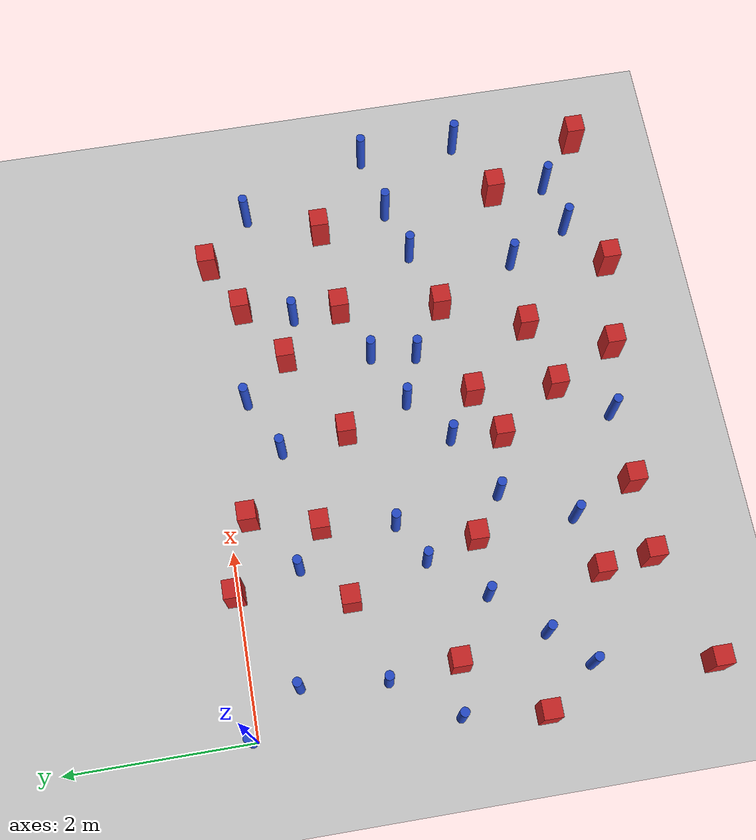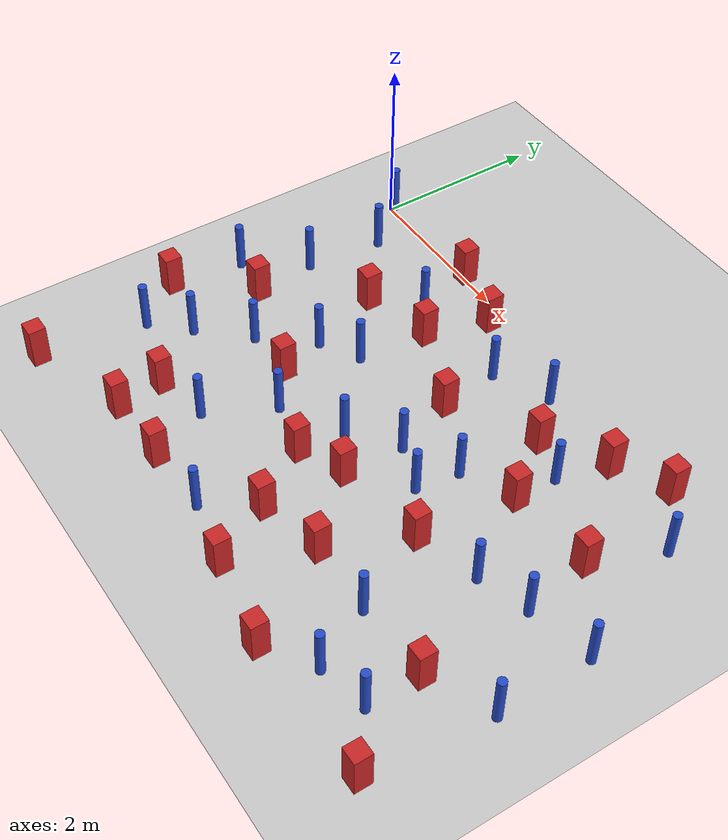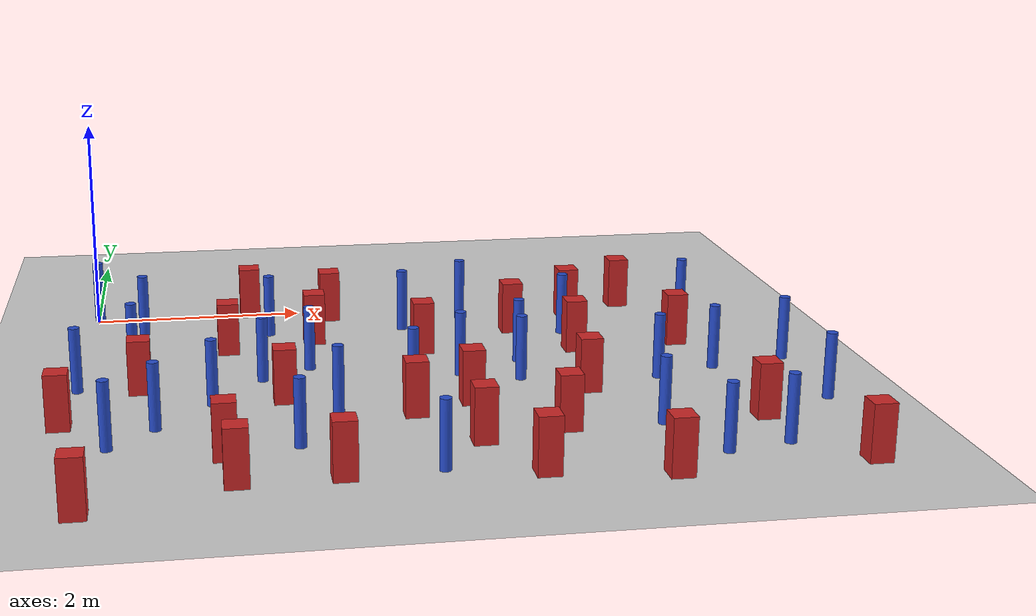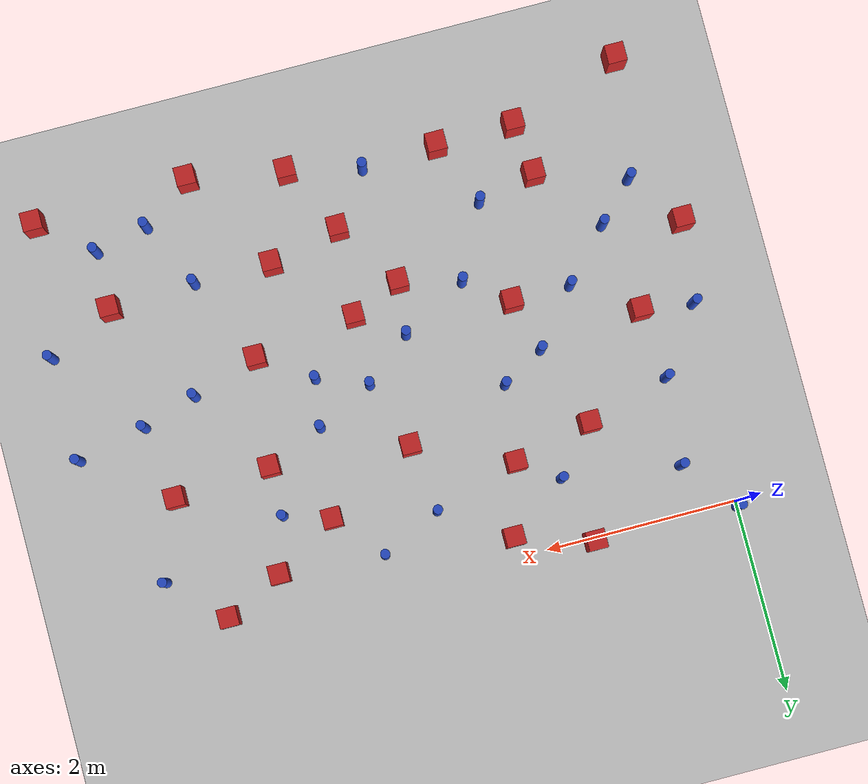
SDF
<sdf version="1.6">
 <world name="default">
  <model name="ground_plane">
   <static>1</static>
   <link name="link">
    <collision name="collision">
     <geometry><plane><normal>0 0 1</normal><size>100 100</size></plane></geometry>
     <surface><friction><ode><mu>100</mu><mu2>50</mu2></ode></friction></surface>
    </collision>
    <visual name="visual">
     <cast_shadows>0</cast_shadows>
     <geometry><plane><normal>0 0 1</normal><size>100 100</size></plane></geometry>
     <material>
      <ambient>1.0 1.0 1.0 1.0</ambient>
      <diffuse>0.8 0.8 0.8 1.0</diffuse>
      <specular>0.01 0.01 0.01 1.000000</specular>
     </material>
    </visual>
   </link>
  </model>
  <model name="NamedLocations">
   <static>true</static>
   <link name="DefaultStart"><pose>8.5 0 0 0 0 3.14</pose></link>
  </model>
  <model name="pole_obstacle7">
   <static>true</static>
   <pose>2.14908445065 -2.89493434447 7.38925637345e-09 -8.47170692798e-08 1.24976764939e-08 -1.74513093025e-07</pose>
   <link name="link">
    <pose>0 0 0.3 0 -0 0</pose>
    <inertial>
     <mass>1</mass>
     <inertia><ixx>0.145833</ixx><ixy>0</ixy><ixz>0</ixz><iyy>0.145833</iyy><iyz>0</iyz><izz>0.125</izz></inertia>
    </inertial>
    <collision name="collision">
     <geometry><cylinder><radius>0.05</radius><length>.6</length></cylinder></geometry>
    </collision>
    <visual name="visual">
     <geometry><cylinder><radius>0.05</radius><length>.6</length></cylinder></geometry>
     <material>
      <script><name>Gazebo/Blue</name><uri>file://media/materials/scripts/gazebo.material</uri></script>
     </material>
    </visual>
   </link>
  </model>
  <model name="pole_obstacle8">
   <static>true</static>
   <pose>1.99184411224 -1.75286387107 7.38925637345e-09 -8.47170692795e-08 1.24976764702e-08 -1.74513093038e-07</pose>
   <link name="link">
    <pose>0 0 0.3 0 -0 0</pose>
    <inertial>
     <mass>1</mass>
     <inertia><ixx>0.145833</ixx><ixy>0</ixy><ixz>0</ixz><iyy>0.145833</iyy><iyz>0</iyz><izz>0.125</izz></inertia>
    </inertial>
    <collision name="collision">
     <geometry><cylinder><radius>0.05</radius><length>.6</length></cylinder></geometry>
    </collision>
    <visual name="visual">
     <geometry><cylinder><radius>0.05</radius><length>.6</length></cylinder></geometry>
     <material>
      <script><name>Gazebo/Blue</name><uri>file://media/materials/scripts/gazebo.material</uri></script>
     </material>
    </visual>
   </link>
  </model>
  <model name="square_post_obstacle8">
   <static>true</static>
   <pose>1.7114251339 -2.5676912984 1.91545236811e-07 -7.35059704564e-06 1.12565212e-07 2.39332434364e-05</pose>
   <link name="link">
    <pose>0 0 0.25 0 -0 0</pose>
    <inertial>
     <mass>100</mass>
     <inertia>
      <ixx>0.166667</ixx>
      <ixy>0</ixy>
      <ixz>0</ixz>
      <iyy>0.166667</iyy>
      <iyz>0</iyz>
      <izz>0.166667</izz>
     </inertia>
    </inertial>
    <collision name="collision"><geometry><box><size>.2 .2 .5</size></box></geometry></collision>
    <visual name="visual">
     <geometry><box><size>.2 .2 .5</size></box></geometry>
     <material>
      <script><name>Gazebo/Red</name><uri>file://media/materials/scripts/gazebo.material</uri></script>
     </material>
    </visual>
   </link>
  </model>
  <model name="pole_obstacle15">
   <static>true</static>
   <pose>5.86521102826 -0.665007750339 7.38925637345e-09 -8.47170692799e-08 1.24976765038e-08 -1.74513093018e-07</pose>
   <link name="link">
    <pose>0 0 0.3 0 -0 0</pose>
    <inertial>
     <mass>1</mass>
     <inertia><ixx>0.145833</ixx><ixy>0</ixy><ixz>0</ixz><iyy>0.145833</iyy><iyz>0</iyz><izz>0.125</izz></inertia>
    </inertial>
    <collision name="collision">
     <geometry><cylinder><radius>0.05</radius><length>.6</length></cylinder></geometry>
    </collision>
    <visual name="visual">
     <geometry><cylinder><radius>0.05</radius><length>.6</length></cylinder></geometry>
     <material>
      <script><name>Gazebo/Blue</name><uri>file://media/materials/scripts/gazebo.material</uri></script>
     </material>
    </visual>
   </link>
  </model>
  <model name="square_post_obstacle12">
   <static>true</static>
   <pose>3.25410924652 -3.74712516584 1.91545236811e-07 -7.35059704564e-06 1.12565212e-07 2.39332434364e-05</pose>
   <link name="link">
    <pose>0 0 0.25 0 -0 0</pose>
    <inertial>
     <mass>100</mass>
     <inertia>
      <ixx>0.166667</ixx>
      <ixy>0</ixy>
      <ixz>0</ixz>
      <iyy>0.166667</iyy>
      <iyz>0</iyz>
      <izz>0.166667</izz>
     </inertia>
    </inertial>
    <collision name="collision"><geometry><box><size>.2 .2 .5</size></box></geometry></collision>
    <visual name="visual">
     <geometry><box><size>.2 .2 .5</size></box></geometry>
     <material>
      <script><name>Gazebo/Red</name><uri>file://media/materials/scripts/gazebo.material</uri></script>
     </material>
    </visual>
   </link>
  </model>
  <model name="square_post_obstacle17">
   <static>true</static>
   <pose>4.00412145843 -3.56660141337 1.91545236811e-07 -7.35059704564e-06 1.12565212e-07 2.39332434364e-05</pose>
   <link name="link">
    <pose>0 0 0.25 0 -0 0</pose>
    <inertial>
     <mass>100</mass>
     <inertia>
      <ixx>0.166667</ixx>
      <ixy>0</ixy>
      <ixz>0</ixz>
      <iyy>0.166667</iyy>
      <iyz>0</iyz>
      <izz>0.166667</izz>
     </inertia>
    </inertial>
    <collision name="collision"><geometry><box><size>.2 .2 .5</size></box></geometry></collision>
    <visual name="visual">
     <geometry><box><size>.2 .2 .5</size></box></geometry>
     <material>
      <script><name>Gazebo/Red</name><uri>file://media/materials/scripts/gazebo.material</uri></script>
     </material>
    </visual>
   </link>
  </model>
  <model name="pole_obstacle21">
   <static>true</static>
   <pose>4.53729864768 -1.02349969025 7.38925637345e-09 -8.471706928e-08 1.24976765101e-08 -1.74513093015e-07</pose>
   <link name="link">
    <pose>0 0 0.3 0 -0 0</pose>
    <inertial>
     <mass>1</mass>
     <inertia><ixx>0.145833</ixx><ixy>0</ixy><ixz>0</ixz><iyy>0.145833</iyy><iyz>0</iyz><izz>0.125</izz></inertia>
    </inertial>
    <collision name="collision">
     <geometry><cylinder><radius>0.05</radius><length>.6</length></cylinder></geometry>
    </collision>
    <visual name="visual">
     <geometry><cylinder><radius>0.05</radius><length>.6</length></cylinder></geometry>
     <material>
      <script><name>Gazebo/Blue</name><uri>file://media/materials/scripts/gazebo.material</uri></script>
     </material>
    </visual>
   </link>
  </model>
  <model name="square_post_obstacle23">
   <static>true</static>
   <pose>5.32038070776 -0.160613806621 1.91545236811e-07 -7.35059704564e-06 1.12565212e-07 2.39332434364e-05</pose>
   <link name="link">
    <pose>0 0 0.25 0 -0 0</pose>
    <inertial>
     <mass>100</mass>
     <inertia>
      <ixx>0.166667</ixx>
      <ixy>0</ixy>
      <ixz>0</ixz>
      <iyy>0.166667</iyy>
      <iyz>0</iyz>
      <izz>0.166667</izz>
     </inertia>
    </inertial>
    <collision name="collision"><geometry><box><size>.2 .2 .5</size></box></geometry></collision>
    <visual name="visual">
     <geometry><box><size>.2 .2 .5</size></box></geometry>
     <material>
      <script><name>Gazebo/Red</name><uri>file://media/materials/scripts/gazebo.material</uri></script>
     </material>
    </visual>
   </link>
  </model>
  <model name="pole_obstacle32">
   <static>true</static>
   <pose>6.42759517815 -3.18701903292 7.38925637345e-09 -8.47170692798e-08 1.24976764937e-08 -1.74513093023e-07</pose>
   <link name="link">
    <pose>0 0 0.3 0 -0 0</pose>
    <inertial>
     <mass>1</mass>
     <inertia><ixx>0.145833</ixx><ixy>0</ixy><ixz>0</ixz><iyy>0.145833</iyy><iyz>0</iyz><izz>0.125</izz></inertia>
    </inertial>
    <collision name="collision">
     <geometry><cylinder><radius>0.05</radius><length>.6</length></cylinder></geometry>
    </collision>
    <visual name="visual">
     <geometry><cylinder><radius>0.05</radius><length>.6</length></cylinder></geometry>
     <material>
      <script><name>Gazebo/Blue</name><uri>file://media/materials/scripts/gazebo.material</uri></script>
     </material>
    </visual>
   </link>
  </model>
  <model name="square_post_obstacle28">
   <static>true</static>
   <pose>4.40141531566 -2.66631912794 1.91545236811e-07 -7.35059704564e-06 1.12565212e-07 2.39332434364e-05</pose>
   <link name="link">
    <pose>0 0 0.25 0 -0 0</pose>
    <inertial>
     <mass>100</mass>
     <inertia>
      <ixx>0.166667</ixx>
      <ixy>0</ixy>
      <ixz>0</ixz>
      <iyy>0.166667</iyy>
      <iyz>0</iyz>
      <izz>0.166667</izz>
     </inertia>
    </inertial>
    <collision name="collision"><geometry><box><size>.2 .2 .5</size></box></geometry></collision>
    <visual name="visual">
     <geometry><box><size>.2 .2 .5</size></box></geometry>
     <material>
      <script><name>Gazebo/Red</name><uri>file://media/materials/scripts/gazebo.material</uri></script>
     </material>
    </visual>
   </link>
  </model>
  <model name="pole_obstacle34">
   <static>true</static>
   <pose>3.62281975082 -0.374276649301 7.38925637345e-09 -8.471706928e-08 1.24976765172e-08 -1.74513093013e-07</pose>
   <link name="link">
    <pose>0 0 0.3 0 -0 0</pose>
    <inertial>
     <mass>1</mass>
     <inertia><ixx>0.145833</ixx><ixy>0</ixy><ixz>0</ixz><iyy>0.145833</iyy><iyz>0</iyz><izz>0.125</izz></inertia>
    </inertial>
    <collision name="collision">
     <geometry><cylinder><radius>0.05</radius><length>.6</length></cylinder></geometry>
    </collision>
    <visual name="visual">
     <geometry><cylinder><radius>0.05</radius><length>.6</length></cylinder></geometry>
     <material>
      <script><name>Gazebo/Blue</name><uri>file://media/materials/scripts/gazebo.material</uri></script>
     </material>
    </visual>
   </link>
  </model>
  <model name="pole_obstacle54">
   <static>true</static>
   <pose>0.375780018371 -1.40705268482 7.38925637345e-09 -8.47170692798e-08 1.24976765025e-08 -1.74513093018e-07</pose>
   <link name="link">
    <pose>0 0 0.3 0 -0 0</pose>
    <inertial>
     <mass>1</mass>
     <inertia><ixx>0.145833</ixx><ixy>0</ixy><ixz>0</ixz><iyy>0.145833</iyy><iyz>0</iyz><izz>0.125</izz></inertia>
    </inertial>
    <collision name="collision">
     <geometry><cylinder><radius>0.05</radius><length>.6</length></cylinder></geometry>
    </collision>
    <visual name="visual">
     <geometry><cylinder><radius>0.05</radius><length>.6</length></cylinder></geometry>
     <material>
      <script><name>Gazebo/Blue</name><uri>file://media/materials/scripts/gazebo.material</uri></script>
     </material>
    </visual>
   </link>
  </model>
  <model name="square_post_obstacle41">
   <static>true</static>
   <pose>3.09473459793 -1.39364364701 1.91545236811e-07 -7.35059704564e-06 1.12565212e-07 2.39332434364e-05</pose>
   <link name="link">
    <pose>0 0 0.25 0 -0 0</pose>
    <inertial>
     <mass>100</mass>
     <inertia>
      <ixx>0.166667</ixx>
      <ixy>0</ixy>
      <ixz>0</ixz>
      <iyy>0.166667</iyy>
      <iyz>0</iyz>
      <izz>0.166667</izz>
     </inertia>
    </inertial>
    <collision name="collision"><geometry><box><size>.2 .2 .5</size></box></geometry></collision>
    <visual name="visual">
     <geometry><box><size>.2 .2 .5</size></box></geometry>
     <material>
      <script><name>Gazebo/Red</name><uri>file://media/materials/scripts/gazebo.material</uri></script>
     </material>
    </visual>
   </link>
  </model>
  <model name="square_post_obstacle46">
   <static>true</static>
   <pose>5.72413039317 -3.53020704582 1.91545236811e-07 -7.35059704564e-06 1.12565212e-07 2.39332434364e-05</pose>
   <link name="link">
    <pose>0 0 0.25 0 -0 0</pose>
    <inertial>
     <mass>100</mass>
     <inertia>
      <ixx>0.166667</ixx>
      <ixy>0</ixy>
      <ixz>0</ixz>
      <iyy>0.166667</iyy>
      <iyz>0</iyz>
      <izz>0.166667</izz>
     </inertia>
    </inertial>
    <collision name="collision"><geometry><box><size>.2 .2 .5</size></box></geometry></collision>
    <visual name="visual">
     <geometry><box><size>.2 .2 .5</size></box></geometry>
     <material>
      <script><name>Gazebo/Red</name><uri>file://media/materials/scripts/gazebo.material</uri></script>
     </material>
    </visual>
   </link>
  </model>
  <model name="square_post_obstacle50">
   <static>true</static>
   <pose>1.23055104204 -4.34479336745 1.91545236811e-07 -7.35059704564e-06 1.12565212e-07 2.39332434364e-05</pose>
   <link name="link">
    <pose>0 0 0.25 0 -0 0</pose>
    <inertial>
     <mass>100</mass>
     <inertia>
      <ixx>0.166667</ixx>
      <ixy>0</ixy>
      <ixz>0</ixz>
      <iyy>0.166667</iyy>
      <iyz>0</iyz>
      <izz>0.166667</izz>
     </inertia>
    </inertial>
    <collision name="collision"><geometry><box><size>.2 .2 .5</size></box></geometry></collision>
    <visual name="visual">
     <geometry><box><size>.2 .2 .5</size></box></geometry>
     <material>
      <script><name>Gazebo/Red</name><uri>file://media/materials/scripts/gazebo.material</uri></script>
     </material>
    </visual>
   </link>
  </model>
  <model name="pole_obstacle67">
   <static>true</static>
   <pose>2.84828356699 -4.29018562051 7.38925637345e-09 -8.47170692798e-08 1.24976765033e-08 -1.74513093019e-07</pose>
   <link name="link">
    <pose>0 0 0.3 0 -0 0</pose>
    <inertial>
     <mass>1</mass>
     <inertia><ixx>0.145833</ixx><ixy>0</ixy><ixz>0</ixz><iyy>0.145833</iyy><iyz>0</iyz><izz>0.125</izz></inertia>
    </inertial>
    <collision name="collision">
     <geometry><cylinder><radius>0.05</radius><length>.6</length></cylinder></geometry>
    </collision>
    <visual name="visual">
     <geometry><cylinder><radius>0.05</radius><length>.6</length></cylinder></geometry>
     <material>
      <script><name>Gazebo/Blue</name><uri>file://media/materials/scripts/gazebo.material</uri></script>
     </material>
    </visual>
   </link>
  </model>
  <model name="square_post_obstacle52">
   <static>true</static>
   <pose>1.26507650885 -1.15579981526 1.91545236811e-07 -7.35059704564e-06 1.12565212e-07 2.39332434364e-05</pose>
   <link name="link">
    <pose>0 0 0.25 0 -0 0</pose>
    <inertial>
     <mass>100</mass>
     <inertia>
      <ixx>0.166667</ixx>
      <ixy>0</ixy>
      <ixz>0</ixz>
      <iyy>0.166667</iyy>
      <iyz>0</iyz>
      <izz>0.166667</izz>
     </inertia>
    </inertial>
    <collision name="collision"><geometry><box><size>.2 .2 .5</size></box></geometry></collision>
    <visual name="visual">
     <geometry><box><size>.2 .2 .5</size></box></geometry>
     <material>
      <script><name>Gazebo/Red</name><uri>file://media/materials/scripts/gazebo.material</uri></script>
     </material>
    </visual>
   </link>
  </model>
  <model name="square_post_obstacle53">
   <static>true</static>
   <pose>4.05412183959 -0.870190019096 1.91545236811e-07 -7.35059704564e-06 1.12565212e-07 2.39332434364e-05</pose>
   <link name="link">
    <pose>0 0 0.25 0 -0 0</pose>
    <inertial>
     <mass>100</mass>
     <inertia>
      <ixx>0.166667</ixx>
      <ixy>0</ixy>
      <ixz>0</ixz>
      <iyy>0.166667</iyy>
      <iyz>0</iyz>
      <izz>0.166667</izz>
     </inertia>
    </inertial>
    <collision name="collision"><geometry><box><size>.2 .2 .5</size></box></geometry></collision>
    <visual name="visual">
     <geometry><box><size>.2 .2 .5</size></box></geometry>
     <material>
      <script><name>Gazebo/Red</name><uri>file://media/materials/scripts/gazebo.material</uri></script>
     </material>
    </visual>
   </link>
  </model>
  <model name="square_post_obstacle57">
   <static>true</static>
   <pose>4.71587396722 -0.457304389804 1.91545236811e-07 -7.35059704564e-06 1.12565212e-07 2.39332434364e-05</pose>
   <link name="link">
    <pose>0 0 0.25 0 -0 0</pose>
    <inertial>
     <mass>100</mass>
     <inertia>
      <ixx>0.166667</ixx>
      <ixy>0</ixy>
      <ixz>0</ixz>
      <iyy>0.166667</iyy>
      <iyz>0</iyz>
      <izz>0.166667</izz>
     </inertia>
    </inertial>
    <collision name="collision"><geometry><box><size>.2 .2 .5</size></box></geometry></collision>
    <visual name="visual">
     <geometry><box><size>.2 .2 .5</size></box></geometry>
     <material>
      <script><name>Gazebo/Red</name><uri>file://media/materials/scripts/gazebo.material</uri></script>
     </material>
    </visual>
   </link>
  </model>
  <model name="square_post_obstacle59">
   <static>true</static>
   <pose>-0.194329762982 -2.93886804131 1.91545236811e-07 -7.35059704564e-06 1.12565212e-07 2.39332434364e-05</pose>
   <link name="link">
    <pose>0 0 0.25 0 -0 0</pose>
    <inertial>
     <mass>100</mass>
     <inertia>
      <ixx>0.166667</ixx>
      <ixy>0</ixy>
      <ixz>0</ixz>
      <iyy>0.166667</iyy>
      <iyz>0</iyz>
      <izz>0.166667</izz>
     </inertia>
    </inertial>
    <collision name="collision"><geometry><box><size>.2 .2 .5</size></box></geometry></collision>
    <visual name="visual">
     <geometry><box><size>.2 .2 .5</size></box></geometry>
     <material>
      <script><name>Gazebo/Red</name><uri>file://media/materials/scripts/gazebo.material</uri></script>
     </material>
    </visual>
   </link>
  </model>
  <model name="pole_obstacle71">
   <static>true</static>
   <pose>0.00816820797269 0.0530729815732 7.38925637345e-09 -8.471706928e-08 1.24976765096e-08 -1.74513093014e-07</pose>
   <link name="link">
    <pose>0 0 0.3 0 -0 0</pose>
    <inertial>
     <mass>1</mass>
     <inertia><ixx>0.145833</ixx><ixy>0</ixy><ixz>0</ixz><iyy>0.145833</iyy><iyz>0</iyz><izz>0.125</izz></inertia>
    </inertial>
    <collision name="collision">
     <geometry><cylinder><radius>0.05</radius><length>.6</length></cylinder></geometry>
    </collision>
    <visual name="visual">
     <geometry><cylinder><radius>0.05</radius><length>.6</length></cylinder></geometry>
     <material>
      <script><name>Gazebo/Blue</name><uri>file://media/materials/scripts/gazebo.material</uri></script>
     </material>
    </visual>
   </link>
  </model>
  <model name="pole_obstacle78">
   <static>true</static>
   <pose>1.76806035619 -3.64795132494 7.38925637345e-09 -8.47170692799e-08 1.24976765053e-08 -1.74513093017e-07</pose>
   <link name="link">
    <pose>0 0 0.3 0 -0 0</pose>
    <inertial>
     <mass>1</mass>
     <inertia><ixx>0.145833</ixx><ixy>0</ixy><ixz>0</ixz><iyy>0.145833</iyy><iyz>0</iyz><izz>0.125</izz></inertia>
    </inertial>
    <collision name="collision">
     <geometry><cylinder><radius>0.05</radius><length>.6</length></cylinder></geometry>
    </collision>
    <visual name="visual">
     <geometry><cylinder><radius>0.05</radius><length>.6</length></cylinder></geometry>
     <material>
      <script><name>Gazebo/Blue</name><uri>file://media/materials/scripts/gazebo.material</uri></script>
     </material>
    </visual>
   </link>
  </model>
  <model name="pole_obstacle87">
   <static>true</static>
   <pose>5.68408358011 -2.25685791552 7.38925637345e-09 -8.47170692798e-08 1.24976764937e-08 -1.74513093023e-07</pose>
   <link name="link">
    <pose>0 0 0.3 0 -0 0</pose>
    <inertial>
     <mass>1</mass>
     <inertia><ixx>0.145833</ixx><ixy>0</ixy><ixz>0</ixz><iyy>0.145833</iyy><iyz>0</iyz><izz>0.125</izz></inertia>
    </inertial>
    <collision name="collision">
     <geometry><cylinder><radius>0.05</radius><length>.6</length></cylinder></geometry>
    </collision>
    <visual name="visual">
     <geometry><cylinder><radius>0.05</radius><length>.6</length></cylinder></geometry>
     <material>
      <script><name>Gazebo/Blue</name><uri>file://media/materials/scripts/gazebo.material</uri></script>
     </material>
    </visual>
   </link>
  </model>
  <model name="square_post_obstacle82">
   <static>true</static>
   <pose>0.03997479998 -4.74278870853 1.91545236811e-07 -7.35059704564e-06 1.12565212e-07 2.39332434364e-05</pose>
   <link name="link">
    <pose>0 0 0.25 0 -0 0</pose>
    <inertial>
     <mass>100</mass>
     <inertia>
      <ixx>0.166667</ixx>
      <ixy>0</ixy>
      <ixz>0</ixz>
      <iyy>0.166667</iyy>
      <iyz>0</iyz>
      <izz>0.166667</izz>
     </inertia>
    </inertial>
    <collision name="collision"><geometry><box><size>.2 .2 .5</size></box></geometry></collision>
    <visual name="visual">
     <geometry><box><size>.2 .2 .5</size></box></geometry>
     <material>
      <script><name>Gazebo/Red</name><uri>file://media/materials/scripts/gazebo.material</uri></script>
     </material>
    </visual>
   </link>
  </model>
  <model name="pole_obstacle96">
   <static>true</static>
   <pose>0.462825550435 -0.498114350224 7.38925637345e-09 -8.47170692798e-08 1.24976764931e-08 -1.74513093024e-07</pose>
   <link name="link">
    <pose>0 0 0.3 0 -0 0</pose>
    <inertial>
     <mass>1</mass>
     <inertia><ixx>0.145833</ixx><ixy>0</ixy><ixz>0</ixz><iyy>0.145833</iyy><iyz>0</iyz><izz>0.125</izz></inertia>
    </inertial>
    <collision name="collision">
     <geometry><cylinder><radius>0.05</radius><length>.6</length></cylinder></geometry>
    </collision>
    <visual name="visual">
     <geometry><cylinder><radius>0.05</radius><length>.6</length></cylinder></geometry>
     <material>
      <script><name>Gazebo/Blue</name><uri>file://media/materials/scripts/gazebo.material</uri></script>
     </material>
    </visual>
   </link>
  </model>
  <model name="pole_obstacle98">
   <static>true</static>
   <pose>3.93919136603 -1.80496720836 7.38925637345e-09 -8.471706928e-08 1.24976765152e-08 -1.74513093012e-07</pose>
   <link name="link">
    <pose>0 0 0.3 0 -0 0</pose>
    <inertial>
     <mass>1</mass>
     <inertia><ixx>0.145833</ixx><ixy>0</ixy><ixz>0</ixz><iyy>0.145833</iyy><iyz>0</iyz><izz>0.125</izz></inertia>
    </inertial>
    <collision name="collision">
     <geometry><cylinder><radius>0.05</radius><length>.6</length></cylinder></geometry>
    </collision>
    <visual name="visual">
     <geometry><cylinder><radius>0.05</radius><length>.6</length></cylinder></geometry>
     <material>
      <script><name>Gazebo/Blue</name><uri>file://media/materials/scripts/gazebo.material</uri></script>
     </material>
    </visual>
   </link>
  </model>
  <model name="square_post_obstacle94">
   <static>true</static>
   <pose>3.62264984816 -4.45689397948 1.91545236811e-07 -7.35059704564e-06 1.12565212e-07 2.39332434364e-05</pose>
   <link name="link">
    <pose>0 0 0.25 0 -0 0</pose>
    <inertial>
     <mass>100</mass>
     <inertia>
      <ixx>0.166667</ixx>
      <ixy>0</ixy>
      <ixz>0</ixz>
      <iyy>0.166667</iyy>
      <iyz>0</iyz>
      <izz>0.166667</izz>
     </inertia>
    </inertial>
    <collision name="collision"><geometry><box><size>.2 .2 .5</size></box></geometry></collision>
    <visual name="visual">
     <geometry><box><size>.2 .2 .5</size></box></geometry>
     <material>
      <script><name>Gazebo/Red</name><uri>file://media/materials/scripts/gazebo.material</uri></script>
     </material>
    </visual>
   </link>
  </model>
  <model name="pole_obstacle102">
   <static>true</static>
   <pose>0.602475025792 -3.09957327462 7.38925637345e-09 -8.47170692799e-08 1.2497676509e-08 -1.74513093016e-07</pose>
   <link name="link">
    <pose>0 0 0.3 0 -0 0</pose>
    <inertial>
     <mass>1</mass>
     <inertia><ixx>0.145833</ixx><ixy>0</ixy><ixz>0</ixz><iyy>0.145833</iyy><iyz>0</iyz><izz>0.125</izz></inertia>
    </inertial>
    <collision name="collision">
     <geometry><cylinder><radius>0.05</radius><length>.6</length></cylinder></geometry>
    </collision>
    <visual name="visual">
     <geometry><cylinder><radius>0.05</radius><length>.6</length></cylinder></geometry>
     <material>
      <script><name>Gazebo/Blue</name><uri>file://media/materials/scripts/gazebo.material</uri></script>
     </material>
    </visual>
   </link>
  </model>
  <model name="pole_obstacle104">
   <static>true</static>
   <pose>-0.094653417852 -2.07535716583 7.38925637345e-09 -8.471706928e-08 1.24976765098e-08 -1.74513093016e-07</pose>
   <link name="link">
    <pose>0 0 0.3 0 -0 0</pose>
    <inertial>
     <mass>1</mass>
     <inertia><ixx>0.145833</ixx><ixy>0</ixy><ixz>0</ixz><iyy>0.145833</iyy><iyz>0</iyz><izz>0.125</izz></inertia>
    </inertial>
    <collision name="collision">
     <geometry><cylinder><radius>0.05</radius><length>.6</length></cylinder></geometry>
    </collision>
    <visual name="visual">
     <geometry><cylinder><radius>0.05</radius><length>.6</length></cylinder></geometry>
     <material>
      <script><name>Gazebo/Blue</name><uri>file://media/materials/scripts/gazebo.material</uri></script>
     </material>
    </visual>
   </link>
  </model>
  <model name="square_post_obstacle101">
   <static>true</static>
   <pose>2.79262401747 -3.05596250727 1.91545236811e-07 -7.35059704564e-06 1.12565212e-07 2.39332434364e-05</pose>
   <link name="link">
    <pose>0 0 0.25 0 -0 0</pose>
    <inertial>
     <mass>100</mass>
     <inertia>
      <ixx>0.166667</ixx>
      <ixy>0</ixy>
      <ixz>0</ixz>
      <iyy>0.166667</iyy>
      <iyz>0</iyz>
      <izz>0.166667</izz>
     </inertia>
    </inertial>
    <collision name="collision"><geometry><box><size>.2 .2 .5</size></box></geometry></collision>
    <visual name="visual">
     <geometry><box><size>.2 .2 .5</size></box></geometry>
     <material>
      <script><name>Gazebo/Red</name><uri>file://media/materials/scripts/gazebo.material</uri></script>
     </material>
    </visual>
   </link>
  </model>
  <model name="pole_obstacle107">
   <static>true</static>
   <pose>5.10753631234 -2.44102783662 7.38925637345e-09 -8.47170692798e-08 1.24976764937e-08 -1.74513093023e-07</pose>
   <link name="link">
    <pose>0 0 0.3 0 -0 0</pose>
    <inertial>
     <mass>1</mass>
     <inertia><ixx>0.145833</ixx><ixy>0</ixy><ixz>0</ixz><iyy>0.145833</iyy><iyz>0</iyz><izz>0.125</izz></inertia>
    </inertial>
    <collision name="collision">
     <geometry><cylinder><radius>0.05</radius><length>.6</length></cylinder></geometry>
    </collision>
    <visual name="visual">
     <geometry><cylinder><radius>0.05</radius><length>.6</length></cylinder></geometry>
     <material>
      <script><name>Gazebo/Blue</name><uri>file://media/materials/scripts/gazebo.material</uri></script>
     </material>
    </visual>
   </link>
  </model>
  <model name="square_post_obstacle111">
   <static>true</static>
   <pose>2.09575663258 -0.958167521459 1.91545236811e-07 -7.35059704564e-06 1.12565212e-07 2.39332434364e-05</pose>
   <link name="link">
    <pose>0 0 0.25 0 -0 0</pose>
    <inertial>
     <mass>100</mass>
     <inertia>
      <ixx>0.166667</ixx>
      <ixy>0</ixy>
      <ixz>0</ixz>
      <iyy>0.166667</iyy>
      <iyz>0</iyz>
      <izz>0.166667</izz>
     </inertia>
    </inertial>
    <collision name="collision"><geometry><box><size>.2 .2 .5</size></box></geometry></collision>
    <visual name="visual">
     <geometry><box><size>.2 .2 .5</size></box></geometry>
     <material>
      <script><name>Gazebo/Red</name><uri>file://media/materials/scripts/gazebo.material</uri></script>
     </material>
    </visual>
   </link>
  </model>
  <model name="square_post_obstacle116">
   <static>true</static>
   <pose>3.31860955937 -2.83030020593 1.91545236811e-07 -7.35059704564e-06 1.12565212e-07 2.39332434364e-05</pose>
   <link name="link">
    <pose>0 0 0.25 0 -0 0</pose>
    <inertial>
     <mass>100</mass>
     <inertia>
      <ixx>0.166667</ixx>
      <ixy>0</ixy>
      <ixz>0</ixz>
      <iyy>0.166667</iyy>
      <iyz>0</iyz>
      <izz>0.166667</izz>
     </inertia>
    </inertial>
    <collision name="collision"><geometry><box><size>.2 .2 .5</size></box></geometry></collision>
    <visual name="visual">
     <geometry><box><size>.2 .2 .5</size></box></geometry>
     <material>
      <script><name>Gazebo/Red</name><uri>file://media/materials/scripts/gazebo.material</uri></script>
     </material>
    </visual>
   </link>
  </model>
  <model name="pole_obstacle118">
   <static>true</static>
   <pose>5.1575581669 -4.26261845319 7.38925637345e-09 -8.47170692796e-08 1.24976764786e-08 -1.74513093032e-07</pose>
   <link name="link">
    <pose>0 0 0.3 0 -0 0</pose>
    <inertial>
     <mass>1</mass>
     <inertia><ixx>0.145833</ixx><ixy>0</ixy><ixz>0</ixz><iyy>0.145833</iyy><iyz>0</iyz><izz>0.125</izz></inertia>
    </inertial>
    <collision name="collision">
     <geometry><cylinder><radius>0.05</radius><length>.6</length></cylinder></geometry>
    </collision>
    <visual name="visual">
     <geometry><cylinder><radius>0.05</radius><length>.6</length></cylinder></geometry>
     <material>
      <script><name>Gazebo/Blue</name><uri>file://media/materials/scripts/gazebo.material</uri></script>
     </material>
    </visual>
   </link>
  </model>
  <model name="square_post_obstacle128">
   <static>true</static>
   <pose>2.30873939639 -0.218754665676 1.91545236811e-07 -7.35059704564e-06 1.12565212e-07 2.39332434364e-05</pose>
   <link name="link">
    <pose>0 0 0.25 0 -0 0</pose>
    <inertial>
     <mass>100</mass>
     <inertia>
      <ixx>0.166667</ixx>
      <ixy>0</ixy>
      <ixz>0</ixz>
      <iyy>0.166667</iyy>
      <iyz>0</iyz>
      <izz>0.166667</izz>
     </inertia>
    </inertial>
    <collision name="collision"><geometry><box><size>.2 .2 .5</size></box></geometry></collision>
    <visual name="visual">
     <geometry><box><size>.2 .2 .5</size></box></geometry>
     <material>
      <script><name>Gazebo/Red</name><uri>file://media/materials/scripts/gazebo.material</uri></script>
     </material>
    </visual>
   </link>
  </model>
  <model name="pole_obstacle137">
   <static>true</static>
   <pose>2.99466890857 -0.672952451165 7.38925637345e-09 -8.471706928e-08 1.24976765177e-08 -1.74513093012e-07</pose>
   <link name="link">
    <pose>0 0 0.3 0 -0 0</pose>
    <inertial>
     <mass>1</mass>
     <inertia><ixx>0.145833</ixx><ixy>0</ixy><ixz>0</ixz><iyy>0.145833</iyy><iyz>0</iyz><izz>0.125</izz></inertia>
    </inertial>
    <collision name="collision">
     <geometry><cylinder><radius>0.05</radius><length>.6</length></cylinder></geometry>
    </collision>
    <visual name="visual">
     <geometry><cylinder><radius>0.05</radius><length>.6</length></cylinder></geometry>
     <material>
      <script><name>Gazebo/Blue</name><uri>file://media/materials/scripts/gazebo.material</uri></script>
     </material>
    </visual>
   </link>
  </model>
  <model name="square_post_obstacle143">
   <static>true</static>
   <pose>4.63150887449 -4.63405840979 1.91545236811e-07 -7.35059704564e-06 1.12565212e-07 2.39332434364e-05</pose>
   <link name="link">
    <pose>0 0 0.25 0 -0 0</pose>
    <inertial>
     <mass>100</mass>
     <inertia>
      <ixx>0.166667</ixx>
      <ixy>0</ixy>
      <ixz>0</ixz>
      <iyy>0.166667</iyy>
      <iyz>0</iyz>
      <izz>0.166667</izz>
     </inertia>
    </inertial>
    <collision name="collision"><geometry><box><size>.2 .2 .5</size></box></geometry></collision>
    <visual name="visual">
     <geometry><box><size>.2 .2 .5</size></box></geometry>
     <material>
      <script><name>Gazebo/Red</name><uri>file://media/materials/scripts/gazebo.material</uri></script>
     </material>
    </visual>
   </link>
  </model>
  <model name="pole_obstacle150">
   <static>true</static>
   <pose>3.33793871676 -2.10409888972 7.38925637345e-09 -8.47170692798e-08 1.24976764939e-08 -1.74513093025e-07</pose>
   <link name="link">
    <pose>0 0 0.3 0 -0 0</pose>
    <inertial>
     <mass>1</mass>
     <inertia><ixx>0.145833</ixx><ixy>0</ixy><ixz>0</ixz><iyy>0.145833</iyy><iyz>0</iyz><izz>0.125</izz></inertia>
    </inertial>
    <collision name="collision">
     <geometry><cylinder><radius>0.05</radius><length>.6</length></cylinder></geometry>
    </collision>
    <visual name="visual">
     <geometry><cylinder><radius>0.05</radius><length>.6</length></cylinder></geometry>
     <material>
      <script><name>Gazebo/Blue</name><uri>file://media/materials/scripts/gazebo.material</uri></script>
     </material>
    </visual>
   </link>
  </model>
  <model name="square_post_obstacle147">
   <static>true</static>
   <pose>5.54971390065 -1.47488597941 1.91545236811e-07 -7.35059704564e-06 1.12565212e-07 2.39332434364e-05</pose>
   <link name="link">
    <pose>0 0 0.25 0 -0 0</pose>
    <inertial>
     <mass>100</mass>
     <inertia>
      <ixx>0.166667</ixx>
      <ixy>0</ixy>
      <ixz>0</ixz>
      <iyy>0.166667</iyy>
      <iyz>0</iyz>
      <izz>0.166667</izz>
     </inertia>
    </inertial>
    <collision name="collision"><geometry><box><size>.2 .2 .5</size></box></geometry></collision>
    <visual name="visual">
     <geometry><box><size>.2 .2 .5</size></box></geometry>
     <material>
      <script><name>Gazebo/Red</name><uri>file://media/materials/scripts/gazebo.material</uri></script>
     </material>
    </visual>
   </link>
  </model>
  <model name="pole_obstacle163">
   <static>true</static>
   <pose>4.82286591949 -3.57152423347 7.38925637345e-09 -8.47170692798e-08 1.24976764937e-08 -1.74513093023e-07</pose>
   <link name="link">
    <pose>0 0 0.3 0 -0 0</pose>
    <inertial>
     <mass>1</mass>
     <inertia><ixx>0.145833</ixx><ixy>0</ixy><ixz>0</ixz><iyy>0.145833</iyy><iyz>0</iyz><izz>0.125</izz></inertia>
    </inertial>
    <collision name="collision">
     <geometry><cylinder><radius>0.05</radius><length>.6</length></cylinder></geometry>
    </collision>
    <visual name="visual">
     <geometry><cylinder><radius>0.05</radius><length>.6</length></cylinder></geometry>
     <material>
      <script><name>Gazebo/Blue</name><uri>file://media/materials/scripts/gazebo.material</uri></script>
     </material>
    </visual>
   </link>
  </model>
  <model name="square_post_obstacle160">
   <static>true</static>
   <pose>1.51678520291 0.0273451327699 1.91545236811e-07 -7.35059704564e-06 1.12565212e-07 2.39332434364e-05</pose>
   <link name="link">
    <pose>0 0 0.25 0 -0 0</pose>
    <inertial>
     <mass>100</mass>
     <inertia>
      <ixx>0.166667</ixx>
      <ixy>0</ixy>
      <ixz>0</ixz>
      <iyy>0.166667</iyy>
      <iyz>0</iyz>
      <izz>0.166667</izz>
     </inertia>
    </inertial>
    <collision name="collision"><geometry><box><size>.2 .2 .5</size></box></geometry></collision>
    <visual name="visual">
     <geometry><box><size>.2 .2 .5</size></box></geometry>
     <material>
      <script><name>Gazebo/Red</name><uri>file://media/materials/scripts/gazebo.material</uri></script>
     </material>
    </visual>
   </link>
  </model>
  <model name="square_post_obstacle171">
   <static>true</static>
   <pose>2.05636668366 -4.32659020348 1.91545236811e-07 -7.35059704564e-06 1.12565212e-07 2.39332434364e-05</pose>
   <link name="link">
    <pose>0 0 0.25 0 -0 0</pose>
    <inertial>
     <mass>100</mass>
     <inertia>
      <ixx>0.166667</ixx>
      <ixy>0</ixy>
      <ixz>0</ixz>
      <iyy>0.166667</iyy>
      <iyz>0</iyz>
      <izz>0.166667</izz>
     </inertia>
    </inertial>
    <collision name="collision"><geometry><box><size>.2 .2 .5</size></box></geometry></collision>
    <visual name="visual">
     <geometry><box><size>.2 .2 .5</size></box></geometry>
     <material>
      <script><name>Gazebo/Red</name><uri>file://media/materials/scripts/gazebo.material</uri></script>
     </material>
    </visual>
   </link>
  </model>
  <model name="pole_obstacle174">
   <static>true</static>
   <pose>0.217429512498 -3.49334785139 7.38925637345e-09 -8.47170692792e-08 1.24976764352e-08 -1.74513093043e-07</pose>
   <link name="link">
    <pose>0 0 0.3 0 -0 0</pose>
    <inertial>
     <mass>1</mass>
     <inertia><ixx>0.145833</ixx><ixy>0</ixy><ixz>0</ixz><iyy>0.145833</iyy><iyz>0</iyz><izz>0.125</izz></inertia>
    </inertial>
    <collision name="collision">
     <geometry><cylinder><radius>0.05</radius><length>.6</length></cylinder></geometry>
    </collision>
    <visual name="visual">
     <geometry><cylinder><radius>0.05</radius><length>.6</length></cylinder></geometry>
     <material>
      <script><name>Gazebo/Blue</name><uri>file://media/materials/scripts/gazebo.material</uri></script>
     </material>
    </visual>
   </link>
  </model>
  <model name="pole_obstacle178">
   <static>true</static>
   <pose>6.41515477417 -2.09524028176 7.38925637345e-09 -8.47170692798e-08 1.24976764937e-08 -1.74513093023e-07</pose>
   <link name="link">
    <pose>0 0 0.3 0 -0 0</pose>
    <inertial>
     <mass>1</mass>
     <inertia><ixx>0.145833</ixx><ixy>0</ixy><ixz>0</ixz><iyy>0.145833</iyy><iyz>0</iyz><izz>0.125</izz></inertia>
    </inertial>
    <collision name="collision">
     <geometry><cylinder><radius>0.05</radius><length>.6</length></cylinder></geometry>
    </collision>
    <visual name="visual">
     <geometry><cylinder><radius>0.05</radius><length>.6</length></cylinder></geometry>
     <material>
      <script><name>Gazebo/Blue</name><uri>file://media/materials/scripts/gazebo.material</uri></script>
     </material>
    </visual>
   </link>
  </model>
  <model name="pole_obstacle179">
   <static>true</static>
   <pose>2.84678159488 -2.51075043973 7.38925637345e-09 -8.47170692798e-08 1.24976764939e-08 -1.74513093025e-07</pose>
   <link name="link">
    <pose>0 0 0.3 0 -0 0</pose>
    <inertial>
     <mass>1</mass>
     <inertia><ixx>0.145833</ixx><ixy>0</ixy><ixz>0</ixz><iyy>0.145833</iyy><iyz>0</iyz><izz>0.125</izz></inertia>
    </inertial>
    <collision name="collision">
     <geometry><cylinder><radius>0.05</radius><length>.6</length></cylinder></geometry>
    </collision>
    <visual name="visual">
     <geometry><cylinder><radius>0.05</radius><length>.6</length></cylinder></geometry>
     <material>
      <script><name>Gazebo/Blue</name><uri>file://media/materials/scripts/gazebo.material</uri></script>
     </material>
    </visual>
   </link>
  </model>
  <model name="pole_obstacle181">
   <static>true</static>
   <pose>5.71862741429 -4.1387310531 7.38925637345e-09 -8.47170692796e-08 1.24976764786e-08 -1.74513093032e-07</pose>
   <link name="link">
    <pose>0 0 0.3 0 -0 0</pose>
    <inertial>
     <mass>1</mass>
     <inertia><ixx>0.145833</ixx><ixy>0</ixy><ixz>0</ixz><iyy>0.145833</iyy><iyz>0</iyz><izz>0.125</izz></inertia>
    </inertial>
    <collision name="collision">
     <geometry><cylinder><radius>0.05</radius><length>.6</length></cylinder></geometry>
    </collision>
    <visual name="visual">
     <geometry><cylinder><radius>0.05</radius><length>.6</length></cylinder></geometry>
     <material>
      <script><name>Gazebo/Blue</name><uri>file://media/materials/scripts/gazebo.material</uri></script>
     </material>
    </visual>
   </link>
  </model>
  <model name="square_post_obstacle183">
   <static>true</static>
   <pose>6.2640198404 -4.57862127715 1.91545236811e-07 -7.35059704564e-06 1.12565212e-07 2.39332434364e-05</pose>
   <link name="link">
    <pose>0 0 0.25 0 -0 0</pose>
    <inertial>
     <mass>100</mass>
     <inertia>
      <ixx>0.166667</ixx>
      <ixy>0</ixy>
      <ixz>0</ixz>
      <iyy>0.166667</iyy>
      <iyz>0</iyz>
      <izz>0.166667</izz>
     </inertia>
    </inertial>
    <collision name="collision"><geometry><box><size>.2 .2 .5</size></box></geometry></collision>
    <visual name="visual">
     <geometry><box><size>.2 .2 .5</size></box></geometry>
     <material>
      <script><name>Gazebo/Red</name><uri>file://media/materials/scripts/gazebo.material</uri></script>
     </material>
    </visual>
   </link>
  </model>
  <model name="square_post_obstacle191">
   <static>true</static>
   <pose>4.54054429324 -1.54414870721 1.91545236811e-07 -7.35059704564e-06 1.12565212e-07 2.39332434364e-05</pose>
   <link name="link">
    <pose>0 0 0.25 0 -0 0</pose>
    <inertial>
     <mass>100</mass>
     <inertia>
      <ixx>0.166667</ixx>
      <ixy>0</ixy>
      <ixz>0</ixz>
      <iyy>0.166667</iyy>
      <iyz>0</iyz>
      <izz>0.166667</izz>
     </inertia>
    </inertial>
    <collision name="collision"><geometry><box><size>.2 .2 .5</size></box></geometry></collision>
    <visual name="visual">
     <geometry><box><size>.2 .2 .5</size></box></geometry>
     <material>
      <script><name>Gazebo/Red</name><uri>file://media/materials/scripts/gazebo.material</uri></script>
     </material>
    </visual>
   </link>
  </model>
  <model name="square_post_obstacle194">
   <static>true</static>
   <pose>0.456275314326 -2.15059518275 1.91545236811e-07 -7.35059704564e-06 1.12565212e-07 2.39332434364e-05</pose>
   <link name="link">
    <pose>0 0 0.25 0 -0 0</pose>
    <inertial>
     <mass>100</mass>
     <inertia>
      <ixx>0.166667</ixx>
      <ixy>0</ixy>
      <ixz>0</ixz>
      <iyy>0.166667</iyy>
      <iyz>0</iyz>
      <izz>0.166667</izz>
     </inertia>
    </inertial>
    <collision name="collision"><geometry><box><size>.2 .2 .5</size></box></geometry></collision>
    <visual name="visual">
     <geometry><box><size>.2 .2 .5</size></box></geometry>
     <material>
      <script><name>Gazebo/Red</name><uri>file://media/materials/scripts/gazebo.material</uri></script>
     </material>
    </visual>
   </link>
  </model>
  <model name="square_post_obstacle195">
   <static>true</static>
   <pose>1.15892202981 -3.79165233599 1.91545236811e-07 -7.35059704564e-06 1.12565212e-07 2.39332434364e-05</pose>
   <link name="link">
    <pose>0 0 0.25 0 -0 0</pose>
    <inertial>
     <mass>100</mass>
     <inertia>
      <ixx>0.166667</ixx>
      <ixy>0</ixy>
      <ixz>0</ixz>
      <iyy>0.166667</iyy>
      <iyz>0</iyz>
      <izz>0.166667</izz>
     </inertia>
    </inertial>
    <collision name="collision"><geometry><box><size>.2 .2 .5</size></box></geometry></collision>
    <visual name="visual">
     <geometry><box><size>.2 .2 .5</size></box></geometry>
     <material>
      <script><name>Gazebo/Red</name><uri>file://media/materials/scripts/gazebo.material</uri></script>
     </material>
    </visual>
   </link>
  </model>
  <model name="pole_obstacle207">
   <static>true</static>
   <pose>1.54688110504 -2.01012535235 7.38925637345e-09 -8.47170692798e-08 1.24976764909e-08 -1.74513093024e-07</pose>
   <link name="link">
    <pose>0 0 0.3 0 -0 0</pose>
    <inertial>
     <mass>1</mass>
     <inertia><ixx>0.145833</ixx><ixy>0</ixy><ixz>0</ixz><iyy>0.145833</iyy><iyz>0</iyz><izz>0.125</izz></inertia>
    </inertial>
    <collision name="collision">
     <geometry><cylinder><radius>0.05</radius><length>.6</length></cylinder></geometry>
    </collision>
    <visual name="visual">
     <geometry><cylinder><radius>0.05</radius><length>.6</length></cylinder></geometry>
     <material>
      <script><name>Gazebo/Blue</name><uri>file://media/materials/scripts/gazebo.material</uri></script>
     </material>
    </visual>
   </link>
  </model>
  <model name="pole_obstacle214">
   <static>true</static>
   <pose>1.08642998783 -2.57771556918 7.38925637345e-09 -8.47170692799e-08 1.24976765053e-08 -1.74513093017e-07</pose>
   <link name="link">
    <pose>0 0 0.3 0 -0 0</pose>
    <inertial>
     <mass>1</mass>
     <inertia><ixx>0.145833</ixx><ixy>0</ixy><ixz>0</ixz><iyy>0.145833</iyy><iyz>0</iyz><izz>0.125</izz></inertia>
    </inertial>
    <collision name="collision">
     <geometry><cylinder><radius>0.05</radius><length>.6</length></cylinder></geometry>
    </collision>
    <visual name="visual">
     <geometry><cylinder><radius>0.05</radius><length>.6</length></cylinder></geometry>
     <material>
      <script><name>Gazebo/Blue</name><uri>file://media/materials/scripts/gazebo.material</uri></script>
     </material>
    </visual>
   </link>
  </model>
  <model name="pole_obstacle217">
   <static>true</static>
   <pose>3.86350897455 -2.30325141734 7.38925637345e-09 -8.47170692798e-08 1.24976764939e-08 -1.74513093025e-07</pose>
   <link name="link">
    <pose>0 0 0.3 0 -0 0</pose>
    <inertial>
     <mass>1</mass>
     <inertia><ixx>0.145833</ixx><ixy>0</ixy><ixz>0</ixz><iyy>0.145833</iyy><iyz>0</iyz><izz>0.125</izz></inertia>
    </inertial>
    <collision name="collision">
     <geometry><cylinder><radius>0.05</radius><length>.6</length></cylinder></geometry>
    </collision>
    <visual name="visual">
     <geometry><cylinder><radius>0.05</radius><length>.6</length></cylinder></geometry>
     <material>
      <script><name>Gazebo/Blue</name><uri>file://media/materials/scripts/gazebo.material</uri></script>
     </material>
    </visual>
   </link>
  </model>
  <model name="pole_obstacle221">
   <static>true</static>
   <pose>1.6811095243 -0.674361630704 7.38925637345e-09 -8.47170692799e-08 1.24976765075e-08 -1.74513093017e-07</pose>
   <link name="link">
    <pose>0 0 0.3 0 -0 0</pose>
    <inertial>
     <mass>1</mass>
     <inertia><ixx>0.145833</ixx><ixy>0</ixy><ixz>0</ixz><iyy>0.145833</iyy><iyz>0</iyz><izz>0.125</izz></inertia>
    </inertial>
    <collision name="collision">
     <geometry><cylinder><radius>0.05</radius><length>.6</length></cylinder></geometry>
    </collision>
    <visual name="visual">
     <geometry><cylinder><radius>0.05</radius><length>.6</length></cylinder></geometry>
     <material>
      <script><name>Gazebo/Blue</name><uri>file://media/materials/scripts/gazebo.material</uri></script>
     </material>
    </visual>
   </link>
  </model>
 </world>
</sdf>
